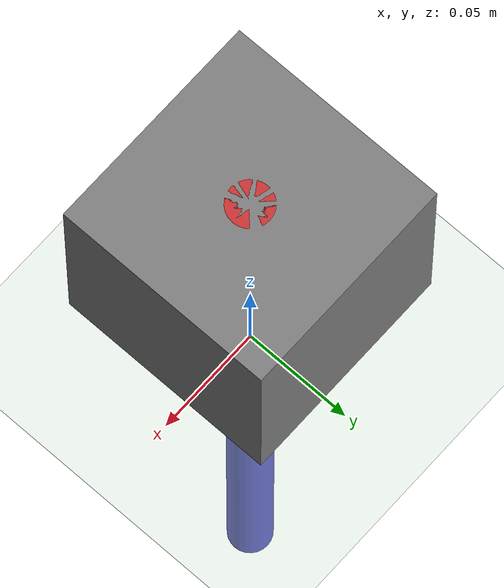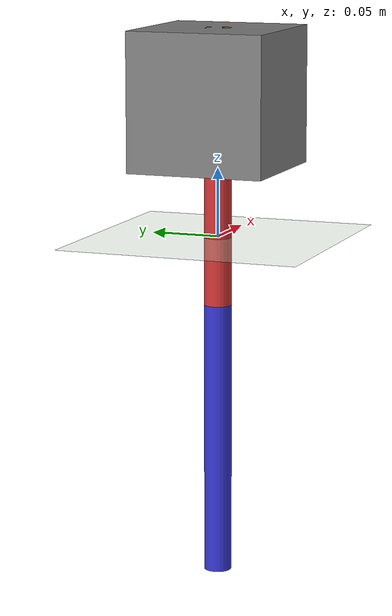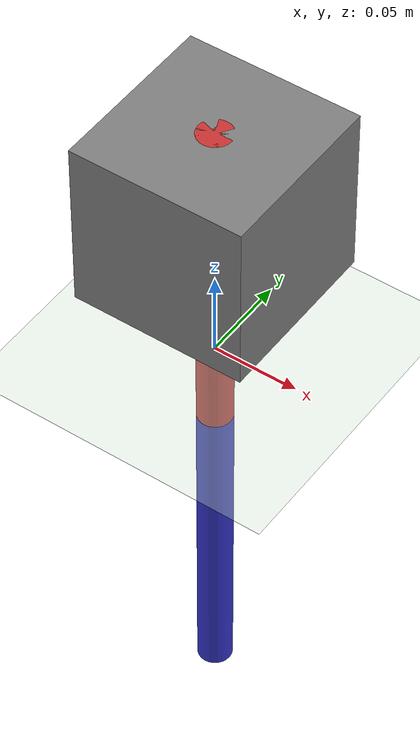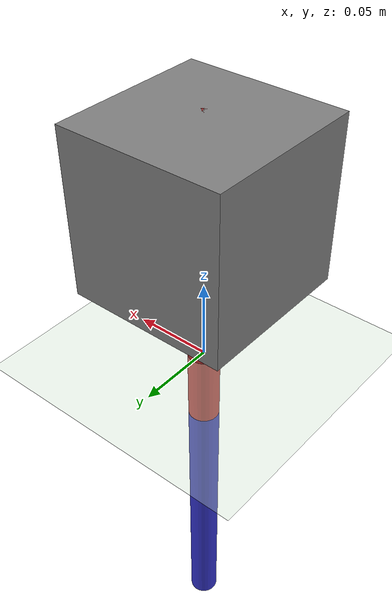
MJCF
<mujoco>
  <option timestep="0.001">
    <flag warmstart="enable" />
  </option>

  <worldbody>
    <!-- Light -->
    <light name="light" pos="0 0 4" diffuse="1 1 1" specular=".1 .1 .1"/>

    <!-- Camera -->
    <camera name="fixed" pos="0 -1.5 0.5" xyaxes="1 0 0 0 0 1" mode="trackcom"/>

    <!-- Floor -->
    <geom name="floor" type="plane" pos="0 0 0" size="1 1 0.1" rgba="0.8 0.9 0.8 1"/>

    <!-- Base -->
    <body name="base" pos="0 0 0.1">
      <joint name="free_base" type="slide" limited="false" damping="0"/>
      <geom name="base_geom" type="box" size="0.05 0.05 0.05" rgba="0.5 0.5 0.5 1" mass="1.0"/>

      <!-- First pendulum -->
      <body name="pendulum1" pos="0 0 0.05">
        <joint name="joint1" type="hinge" pos="0 0 0" axis="0 1 0" limited="false" damping="0.01"/>
        <geom name="arm1" type="cylinder" size="0.01 0.1" pos="0 0 -0.1" rgba="0.8 0.2 0.2 1" mass="3.0"/>

        <!-- Second pendulum -->
        <body name="pendulum2" pos="0 0 -0.2">
          <joint name="joint2" type="hinge" pos="0 0 0" axis="0 1 0" limited="false" damping="0.01"/>
          <geom name="arm2" type="cylinder" size="0.01 0.1" pos="0 0 -0.1" rgba="0.2 0.2 0.8 1" mass="3.0"/>
        </body>
      </body>
    </body>
  </worldbody>

  <actuator>
    <motor name="motor1" joint="joint1" gear="1" ctrlrange="-10 10"/>
    <motor name="motor2" joint="joint2" gear="1" ctrlrange="-10 10"/>
  </actuator>
</mujoco>
